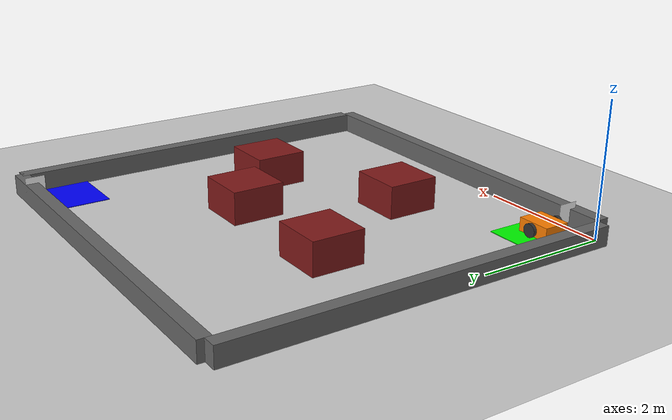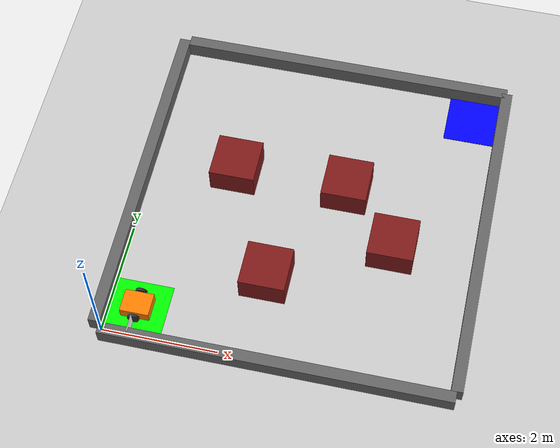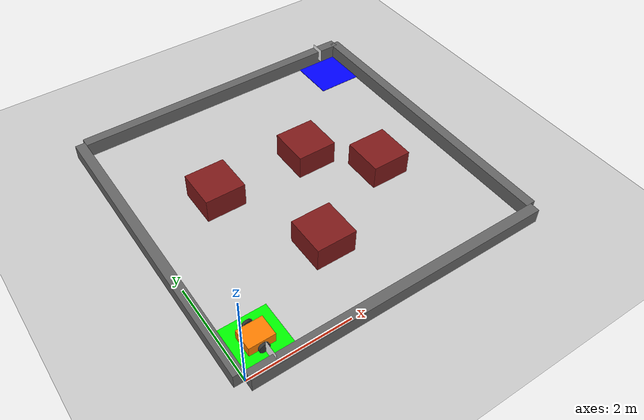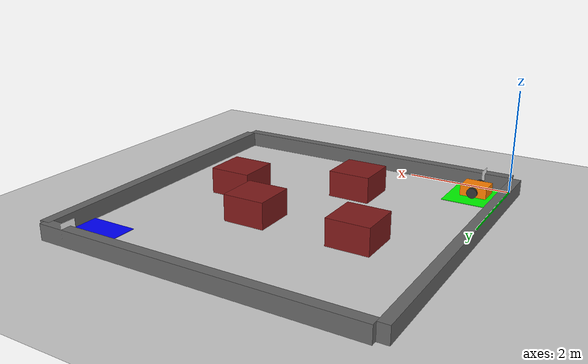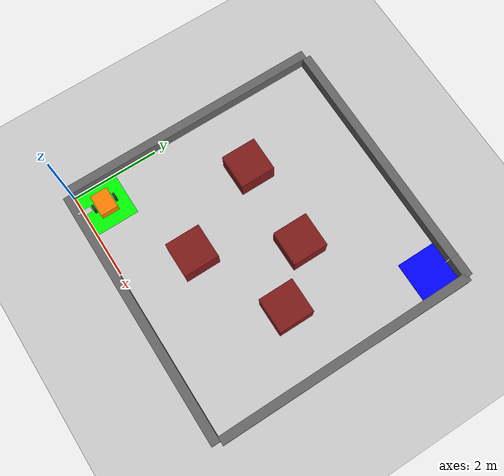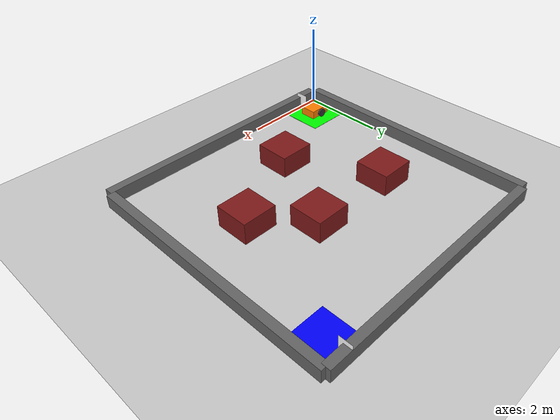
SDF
<?xml version="1.0" ?>
<sdf version="1.9">
  <world name="courier_grid_world">
    <!-- Physics -->
    <physics name="1ms" type="ignored">
      <max_step_size>0.001</max_step_size>
      <real_time_factor>1.0</real_time_factor>
    </physics>

    <!-- Plugins -->
    <plugin filename="gz-sim-physics-system" name="gz::sim::systems::Physics"/>
    <plugin filename="gz-sim-user-commands-system" name="gz::sim::systems::UserCommands"/>
    <plugin filename="gz-sim-scene-broadcaster-system" name="gz::sim::systems::SceneBroadcaster"/>
    <plugin filename="gz-sim-sensors-system" name="gz::sim::systems::Sensors">
      <render_engine>ogre2</render_engine>
    </plugin>

    <!-- Lighting -->
    <light type="directional" name="sun">
      <cast_shadows>true</cast_shadows>
      <pose>0 0 10 0 0 0</pose>
      <diffuse>0.8 0.8 0.8 1</diffuse>
      <specular>0.2 0.2 0.2 1</specular>
      <attenuation>
        <range>1000</range>
        <constant>0.9</constant>
        <linear>0.01</linear>
        <quadratic>0.001</quadratic>
      </attenuation>
      <direction>-0.5 0.1 -0.9</direction>
    </light>

    <!-- Ground Plane -->
    <model name="ground_plane">
      <static>true</static>
      <link name="link">
        <collision name="collision">
          <geometry>
            <plane>
              <normal>0 0 1</normal>
              <size>100 100</size>
            </plane>
          </geometry>
        </collision>
        <visual name="visual">
          <geometry>
            <plane>
              <normal>0 0 1</normal>
              <size>100 100</size>
            </plane>
          </geometry>
          <material>
            <ambient>0.8 0.8 0.8 1</ambient>
            <diffuse>0.8 0.8 0.8 1</diffuse>
          </material>
        </visual>
      </link>
    </model>

    <!-- Room Walls (6x6 grid boundaries) - 30cm height -->
    <!-- North Wall -->
    <model name="wall_north">
      <static>true</static>
      <pose>3 6 0.15 0 0 0</pose>
      <link name="link">
        <collision name="collision">
          <geometry>
            <box>
              <size>6.0 0.2 0.3</size>
            </box>
          </geometry>
        </collision>
        <visual name="visual">
          <geometry>
            <box>
              <size>6.0 0.2 0.3</size>
            </box>
          </geometry>
          <material>
            <ambient>0.3 0.3 0.3 1</ambient>
            <diffuse>0.4 0.4 0.4 1</diffuse>
          </material>
        </visual>
      </link>
    </model>

    <!-- South Wall -->
    <model name="wall_south">
      <static>true</static>
      <pose>3 -0.1 0.15 0 0 0</pose>
      <link name="link">
        <collision name="collision">
          <geometry>
            <box>
              <size>6.0 0.2 0.3</size>
            </box>
          </geometry>
        </collision>
        <visual name="visual">
          <geometry>
            <box>
              <size>6.0 0.2 0.3</size>
            </box>
          </geometry>
          <material>
            <ambient>0.3 0.3 0.3 1</ambient>
            <diffuse>0.4 0.4 0.4 1</diffuse>
          </material>
        </visual>
      </link>
    </model>

    <!-- East Wall -->
    <model name="wall_east">
      <static>true</static>
      <pose>6 3 0.15 0 0 0</pose>
      <link name="link">
        <collision name="collision">
          <geometry>
            <box>
              <size>0.2 6.0 0.3</size>
            </box>
          </geometry>
        </collision>
        <visual name="visual">
          <geometry>
            <box>
              <size>0.2 6.0 0.3</size>
            </box>
          </geometry>
          <material>
            <ambient>0.3 0.3 0.3 1</ambient>
            <diffuse>0.4 0.4 0.4 1</diffuse>
          </material>
        </visual>
      </link>
    </model>

    <!-- West Wall -->
    <model name="wall_west">
      <static>true</static>
      <pose>-0.1 3 0.15 0 0 0</pose>
      <link name="link">
        <collision name="collision">
          <geometry>
            <box>
              <size>0.2 6.0 0.3</size>
            </box>
          </geometry>
        </collision>
        <visual name="visual">
          <geometry>
            <box>
              <size>0.2 6.0 0.3</size>
            </box>
          </geometry>
          <material>
            <ambient>0.3 0.3 0.3 1</ambient>
            <diffuse>0.4 0.4 0.4 1</diffuse>
          </material>
        </visual>
      </link>
    </model>

    <!-- Green START Cell (0, 0) -->
    <model name="start_cell">
      <static>true</static>
      <pose>0.5 0.5 0.01 0 0 0</pose>
      <link name="link">
        <visual name="visual">
          <geometry>
            <box>
              <size>1.0 1.0 0.01</size>
            </box>
          </geometry>
          <material>
            <ambient>0 1 0 1</ambient>
            <diffuse>0 1 0 1</diffuse>
          </material>
        </visual>
      </link>
    </model>

    <!-- AprilTag 0 at START - On south wall, facing north (into room) -->
    <include>
      <uri>model://apriltag_0</uri>
      <name>apriltag_start</name>
      <pose>0.5 0.05 0.25 0 0 0</pose>
    </include>

    <!-- Blue GOAL Cell (5, 5) -->
    <model name="goal_cell">
      <static>true</static>
      <pose>5.5 5.5 0.01 0 0 0</pose>
      <link name="link">
        <visual name="visual">
          <geometry>
            <box>
              <size>1.0 1.0 0.01</size>
            </box>
          </geometry>
          <material>
            <ambient>0 0 1 1</ambient>
            <diffuse>0 0 1 1</diffuse>
          </material>
        </visual>
      </link>
    </model>

    <!-- AprilTag 1 at GOAL - On north wall, facing south (into room) -->
    <include>
      <uri>model://apriltag_1</uri>
      <name>apriltag_goal</name>
      <pose>5.5 5.95 0.25 0 0 3.14159</pose>
    </include>

    <!-- Obstacles (50cm height) -->
    <model name="obstacle_1">
      <static>true</static>
      <pose>2.5 1.5 0.25 0 0 0</pose>
      <link name="link">
        <collision name="collision">
          <geometry>
            <box>
              <size>0.8 0.8 0.5</size>
            </box>
          </geometry>
        </collision>
        <visual name="visual">
          <geometry>
            <box>
              <size>0.8 0.8 0.5</size>
            </box>
          </geometry>
          <material>
            <ambient>0.7 0.2 0.2 1</ambient>
            <diffuse>0.5 0.1 0.1 1</diffuse>
          </material>
        </visual>
      </link>
    </model>

    <model name="obstacle_2">
      <static>true</static>
      <pose>3.5 3.5 0.25 0 0 0</pose>
      <link name="link">
        <collision name="collision">
          <geometry>
            <box>
              <size>0.8 0.8 0.5</size>
            </box>
          </geometry>
        </collision>
        <visual name="visual">
          <geometry>
            <box>
              <size>0.8 0.8 0.5</size>
            </box>
          </geometry>
          <material>
            <ambient>0.7 0.2 0.2 1</ambient>
            <diffuse>0.5 0.1 0.1 1</diffuse>
          </material>
        </visual>
      </link>
    </model>

    <model name="obstacle_3">
      <static>true</static>
      <pose>1.5 3.5 0.25 0 0 0</pose>
      <link name="link">
        <collision name="collision">
          <geometry>
            <box>
              <size>0.8 0.8 0.5</size>
            </box>
          </geometry>
        </collision>
        <visual name="visual">
          <geometry>
            <box>
              <size>0.8 0.8 0.5</size>
            </box>
          </geometry>
          <material>
            <ambient>0.7 0.2 0.2 1</ambient>
            <diffuse>0.5 0.1 0.1 1</diffuse>
          </material>
        </visual>
      </link>
    </model>

    <model name="obstacle_4">
      <static>true</static>
      <pose>4.5 2.5 0.25 0 0 0</pose>
      <link name="link">
        <collision name="collision">
          <geometry>
            <box>
              <size>0.8 0.8 0.5</size>
            </box>
          </geometry>
        </collision>
        <visual name="visual">
          <geometry>
            <box>
              <size>0.8 0.8 0.5</size>
            </box>
          </geometry>
          <material>
            <ambient>0.7 0.2 0.2 1</ambient>
            <diffuse>0.5 0.1 0.1 1</diffuse>
          </material>
        </visual>
      </link>
    </model>

    <!-- Courier Robot -->
    <include>
      <uri>model://courier_robot</uri>
      <name>courier_robot</name>
      <pose>0.5 0.5 0.15 0 0 0</pose>
    </include>

  </world>
</sdf>

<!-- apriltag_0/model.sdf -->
<sdf version="1.9">
  <model name="apriltag_0">
    <static>true</static>
    <link name="link">
      <pose>0 0 0 0 0 0</pose>
      <visual name="visual">
        <geometry>
          <box>
            <size>0.001 0.3 0.3</size>
          </box>
        </geometry>
        <material>
          <ambient>1 1 1 1</ambient>
          <diffuse>1 1 1 1</diffuse>
          <specular>0 0 0 1</specular>
          <emissive>0.3 0.3 0.3 1</emissive>
          <pbr>
            <metal>
              <albedo_map>tag.png</albedo_map>
              <metalness>0.0</metalness>
              <roughness>0.8</roughness>
            </metal>
          </pbr>
        </material>
      </visual>
    </link>
  </model>
</sdf>

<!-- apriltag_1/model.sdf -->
<sdf version="1.9">
  <model name="apriltag_1">
    <static>true</static>
    <link name="link">
      <pose>0 0 0 0 0 0</pose>
      <visual name="visual">
        <geometry>
          <box>
            <size>0.001 0.3 0.3</size>
          </box>
        </geometry>
        <material>
          <ambient>1 1 1 1</ambient>
          <diffuse>1 1 1 1</diffuse>
          <specular>0 0 0 1</specular>
          <emissive>0.3 0.3 0.3 1</emissive>
          <pbr>
            <metal>
              <albedo_map>tag.png</albedo_map>
              <metalness>0.0</metalness>
              <roughness>0.8</roughness>
            </metal>
          </pbr>
        </material>
      </visual>
    </link>
  </model>
</sdf>

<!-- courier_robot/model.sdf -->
<sdf version="1.9">
  <model name="courier_robot">
    <pose>0 0 0.1 0 0 0</pose>

    <!-- Base Link -->
    <link name="base_link">
      <inertial>
        <mass>10.0</mass>
        <inertia>
          <ixx>0.1</ixx>
          <iyy>0.1</iyy>
          <izz>0.1</izz>
        </inertia>
      </inertial>

      <collision name="collision">
        <geometry>
          <box>
            <size>0.5 0.4 0.2</size>
          </box>
        </geometry>
      </collision>

      <visual name="visual">
        <geometry>
          <box>
            <size>0.5 0.4 0.2</size>
          </box>
        </geometry>
        <material>
          <ambient>1 0.5 0 1</ambient>
          <diffuse>1 0.5 0 1</diffuse>
        </material>
      </visual>

      <!-- LiDAR Sensor for obstacle avoidance -->
      <sensor name="lidar" type="gpu_lidar">
        <pose>0 0 0.15 0 0 0</pose>
        <topic>/scan</topic>
        <update_rate>10</update_rate>
        <lidar>
          <scan>
            <horizontal>
              <samples>360</samples>
              <resolution>1</resolution>
              <min_angle>-3.14159</min_angle>
              <max_angle>3.14159</max_angle>
            </horizontal>
          </scan>
          <range>
            <min>0.1</min>
            <max>10.0</max>
            <resolution>0.01</resolution>
          </range>
          <noise>
            <type>gaussian</type>
            <mean>0.0</mean>
            <stddev>0.01</stddev>
          </noise>
        </lidar>
        <visualize>true</visualize>
      </sensor>

      <!-- Camera for AprilTag detection -->
      <sensor name="camera" type="camera">
        <pose>0.25 0 0.15 0 0.3 0</pose>
        <topic>/camera/image_raw</topic>
        <camera>
          <horizontal_fov>1.2</horizontal_fov>
          <image>
            <width>640</width>
            <height>480</height>
            <format>R8G8B8</format>
          </image>
          <clip>
            <near>0.1</near>
            <far>100</far>
          </clip>
          <noise>
            <type>gaussian</type>
            <mean>0.0</mean>
            <stddev>0.007</stddev>
          </noise>
        </camera>
        <update_rate>30</update_rate>
        <visualize>true</visualize>
      </sensor>
    </link>

    <!-- Left Wheel -->
    <link name="left_wheel">
      <pose>0 0.25 0 -1.5707 0 0</pose>
      <inertial>
        <mass>1.0</mass>
        <inertia>
          <ixx>0.01</ixx>
          <iyy>0.01</iyy>
          <izz>0.01</izz>
        </inertia>
      </inertial>
      <collision name="collision">
        <geometry>
          <cylinder>
            <radius>0.1</radius>
            <length>0.05</length>
          </cylinder>
        </geometry>
      </collision>
      <visual name="visual">
        <geometry>
          <cylinder>
            <radius>0.1</radius>
            <length>0.05</length>
          </cylinder>
        </geometry>
        <material>
          <ambient>0.2 0.2 0.2 1</ambient>
          <diffuse>0.2 0.2 0.2 1</diffuse>
        </material>
      </visual>
    </link>

    <!-- Right Wheel -->
    <link name="right_wheel">
      <pose>0 -0.25 0 -1.5707 0 0</pose>
      <inertial>
        <mass>1.0</mass>
        <inertia>
          <ixx>0.01</ixx>
          <iyy>0.01</iyy>
          <izz>0.01</izz>
        </inertia>
      </inertial>
      <collision name="collision">
        <geometry>
          <cylinder>
            <radius>0.1</radius>
            <length>0.05</length>
          </cylinder>
        </geometry>
      </collision>
      <visual name="visual">
        <geometry>
          <cylinder>
            <radius>0.1</radius>
            <length>0.05</length>
          </cylinder>
        </geometry>
        <material>
          <ambient>0.2 0.2 0.2 1</ambient>
          <diffuse>0.2 0.2 0.2 1</diffuse>
        </material>
      </visual>
    </link>

    <!-- Left Wheel Joint -->
    <joint name="left_wheel_joint" type="revolute">
      <parent>base_link</parent>
      <child>left_wheel</child>
      <axis>
        <xyz>0 0 1</xyz>
      </axis>
    </joint>

    <!-- Right Wheel Joint -->
    <joint name="right_wheel_joint" type="revolute">
      <parent>base_link</parent>
      <child>right_wheel</child>
      <axis>
        <xyz>0 0 1</xyz>
      </axis>
    </joint>

    <!-- Differential Drive Plugin -->
    <plugin filename="gz-sim-diff-drive-system" name="gz::sim::systems::DiffDrive">
      <left_joint>left_wheel_joint</left_joint>
      <right_joint>right_wheel_joint</right_joint>
      <wheel_separation>0.5</wheel_separation>
      <wheel_radius>0.1</wheel_radius>
      <odom_publish_frequency>30</odom_publish_frequency>
      <topic>/cmd_vel</topic>
      <odom_topic>/odom</odom_topic>
      <frame_id>odom</frame_id>
      <child_frame_id>base_link</child_frame_id>
    </plugin>

  </model>
</sdf>
